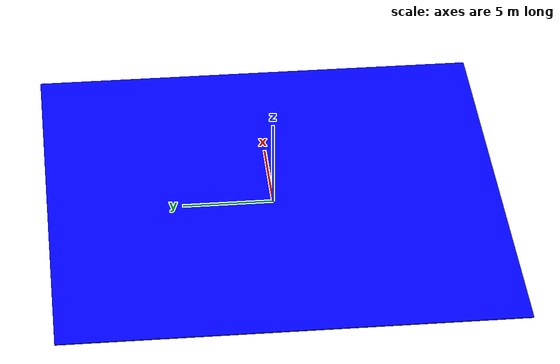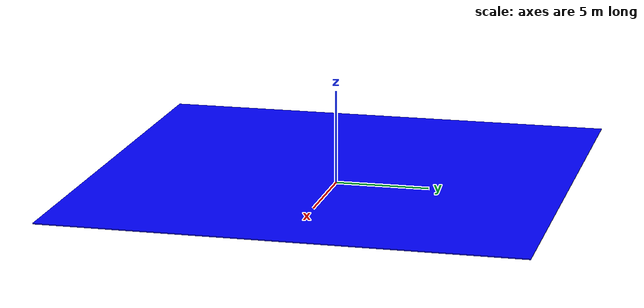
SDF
<?xml version="1.0"?>
<sdf version="1.7">

  <model name="table_top">
  <link name="table_top_link">
    <inertial>
      <mass>40.0</mass>
      <pose>0.0 0.0 0.5 0 0 0</pose>
      <inertia>
          <ixx>2.5</ixx>
          <ixy>0</ixy>
          <ixz>0</ixz>
          <iyy>2.5</iyy>
          <iyz>0</iyz>
          <izz>4.0</izz>
      </inertia>
    </inertial>
    <visual name="bottom">
      <pose>0.0 0.0 0.5 0 0 0</pose>
      <geometry>
        <box>
          <size>25.0 25 0.05</size>
        </box>
      </geometry>
      <material>
        <diffuse>0.0 0.0 1.0 1.0</diffuse>
      </material>
    </visual>
    <collision name="bottom">
      <pose>0.0 0.0 0.5 0 0 0</pose>
      <geometry>
        <box>
          <size>25.0 25.0 0.05</size>
        </box>
      </geometry>
      <drake:proximity_properties>
        <drake:compliant_hydroelastic/>
        <drake:hydroelastic_modulus>1.5e6</drake:hydroelastic_modulus>
      </drake:proximity_properties>
    </collision>
  </link>
  <frame name="table_top_center">
    <pose relative_to="table_top_link">0 0 0.525 0 0 0</pose>
  </frame>
</model>

</sdf>
